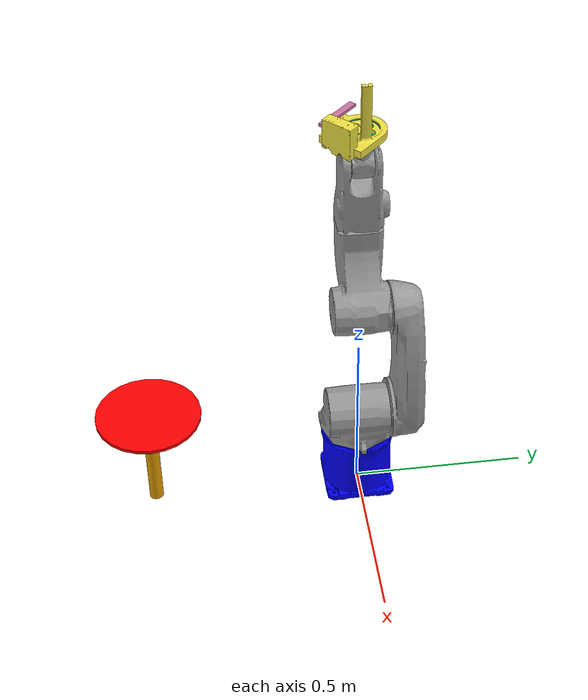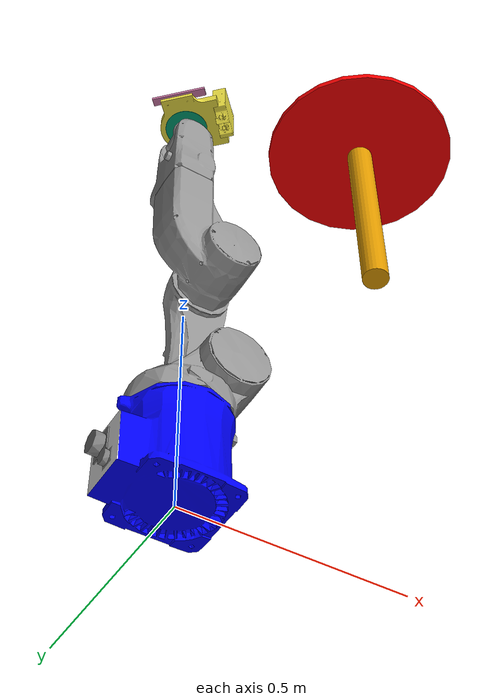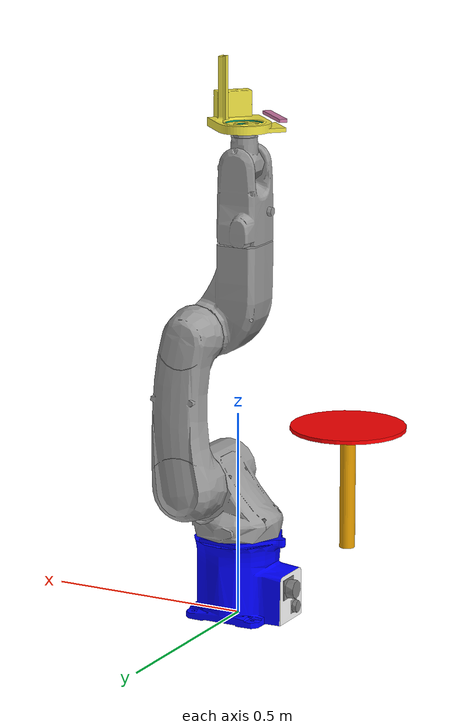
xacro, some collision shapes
<?xml version="1.0" encoding="UTF-8"?>
<robot name="multisensor_vs6577" xmlns:xacro="http://www.ros.org/wiki/xacro">
    <xacro:arg name="sim" default="True" />
    <xacro:include filename="$(find denso_robot_descriptions)/vs6577_description/urdf/vs6577.urdf.xacro"/>

    <xacro:include filename="$(find add_post_pro_robot)/urdf/turntable.urdf.xacro"/>

    <!-- Create camera instance -->
    <turntable parent="world">
		<origin xyz="0 -.6 0.16" rpy="0 0 0"/>
    </turntable>

    <xacro:include filename="$(find add_post_pro_robot)/urdf/multisensor_holder.urdf.xacro"/>
</robot>

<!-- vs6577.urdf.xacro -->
<robot name="vs6577" xmlns:xacro="http://www.ros.org/wiki/xacro">

<xacro:include filename="$(find denso_robot_descriptions)/vs6577_description/urdf/vs6577.transmission.xacro"/>

	<gazebo>
        <plugin name="gazebo_ros_control" filename="libgazebo_ros_control.so">
            <robotNamespace>/vs6577</robotNamespace>
			<legacyModeNS>true</legacyModeNS>
        </plugin>
    </gazebo>

	<link name="world"/>

	<joint name="joint_w" type="fixed">
		<parent link="world"/>
		<child link="base_link"/>
		<origin xyz="0 0 0"/>
	</joint>

	<link name="base_link">
		<visual>
			<origin rpy="0 0 0" xyz="0 0 0"/>
			<geometry>
				<mesh filename="package://denso_robot_descriptions/vs6577_description/meshes/base_link.dae" scale="1 1 1"/>
			</geometry>
		</visual>
		<collision>
			<origin rpy="0 0 0" xyz="0 0 0"/>
			<geometry>
				<mesh filename="package://denso_robot_descriptions/vs6577_description/meshes/base_link.dae" scale="1 1 1"/>
			</geometry>
		</collision>
		<inertial>
			<mass value="1"/>
			<origin rpy="0.000000 0.000000 0.000000" xyz="0.000000 0.000000 0.000000"/>
			<inertia ixx="1" ixy="0" ixz="0" iyy="1" iyz="0" izz="1"/>
		</inertial>
	</link>
	<link name="J1">
		<visual>
			<origin rpy="0 0 0" xyz="0 0 0"/>
			<geometry>
				<mesh filename="package://denso_robot_descriptions/vs6577_description/meshes/J1.dae" scale="1 1 1"/>
			</geometry>
		</visual>
		<collision>
			<origin rpy="0 0 0" xyz="0 0 0"/>
			<geometry>
				<mesh filename="package://denso_robot_descriptions/vs6577_description/meshes/J1.dae" scale="1 1 1"/>
			</geometry>
		</collision>
		<inertial>
			<mass value="1"/>
			<origin rpy="0.000000 0.000000 0.000000" xyz="0.000000 0.000000 0.000000"/>
			<inertia ixx="1" ixy="0" ixz="0" iyy="1" iyz="0" izz="1"/>
		</inertial>
	</link>
	<link name="J2">
		<visual>
			<origin rpy="0 0 0" xyz="0 0 0"/>
			<geometry>
				<mesh filename="package://denso_robot_descriptions/vs6577_description/meshes/J2.dae" scale="1 1 1"/>
			</geometry>
		</visual>
		<collision>
			<origin rpy="0 0 0" xyz="0 0 0"/>
			<geometry>
				<mesh filename="package://denso_robot_descriptions/vs6577_description/meshes/J2.dae" scale="1 1 1"/>
			</geometry>
		</collision>
		<inertial>
			<mass value="1"/>
			<origin rpy="0.000000 0.000000 0.000000" xyz="0.000000 0.000000 0.000000"/>
			<inertia ixx="1" ixy="0" ixz="0" iyy="1" iyz="0" izz="1"/>
		</inertial>
	</link>
	<link name="J3">
		<visual>
			<origin rpy="0 0 0" xyz="0 0 0"/>
			<geometry>
				<mesh filename="package://denso_robot_descriptions/vs6577_description/meshes/J3.dae" scale="1 1 1"/>
			</geometry>
		</visual>
		<collision>
			<origin rpy="0 0 0" xyz="0 0 0"/>
			<geometry>
				<mesh filename="package://denso_robot_descriptions/vs6577_description/meshes/J3.dae" scale="1 1 1"/>
			</geometry>
		</collision>
		<inertial>
			<mass value="1"/>
			<origin rpy="0.000000 0.000000 0.000000" xyz="0.000000 0.000000 0.000000"/>
			<inertia ixx="1" ixy="0" ixz="0" iyy="1" iyz="0" izz="1"/>
		</inertial>
	</link>
	<link name="J4">
		<visual>
			<origin rpy="0 0 0" xyz="0 0 0"/>
			<geometry>
				<mesh filename="package://denso_robot_descriptions/vs6577_description/meshes/J4.dae" scale="1 1 1"/>
			</geometry>
		</visual>
		<collision>
			<origin rpy="0 0 0" xyz="0 0 0"/>
			<geometry>
				<mesh filename="package://denso_robot_descriptions/vs6577_description/meshes/J4.dae" scale="1 1 1"/>
			</geometry>
		</collision>
		<inertial>
			<mass value="1"/>
			<origin rpy="0.000000 0.000000 0.000000" xyz="0.000000 0.000000 0.000000"/>
			<inertia ixx="1" ixy="0" ixz="0" iyy="1" iyz="0" izz="1"/>
		</inertial>
	</link>
	<link name="J5">
		<visual>
			<origin rpy="0 0 0" xyz="0 0 0"/>
			<geometry>
				<mesh filename="package://denso_robot_descriptions/vs6577_description/meshes/J5.dae" scale="1 1 1"/>
			</geometry>
		</visual>
		<collision>
			<origin rpy="0 0 0" xyz="0 0 0"/>
			<geometry>
				<mesh filename="package://denso_robot_descriptions/vs6577_description/meshes/J5.dae" scale="1 1 1"/>
			</geometry>
		</collision>
		<inertial>
			<mass value="1"/>
			<origin rpy="0.000000 0.000000 0.000000" xyz="0.000000 0.000000 0.000000"/>
			<inertia ixx="1" ixy="0" ixz="0" iyy="1" iyz="0" izz="1"/>
		</inertial>
	</link>
	<link name="J6">
		<visual>
			<origin rpy="0 0 0" xyz="0 0 0"/>
			<geometry>
				<mesh filename="package://denso_robot_descriptions/vs6577_description/meshes/J6.dae" scale="1 1 1"/>
			</geometry>
		</visual>
		<collision>
			<origin rpy="0 0 0" xyz="0 0 0"/>
			<geometry>
				<mesh filename="package://denso_robot_descriptions/vs6577_description/meshes/J6.dae" scale="1 1 1"/>
			</geometry>
		</collision>
		<inertial>
			<mass value="1"/>
			<origin rpy="0.000000 0.000000 0.000000" xyz="0.000000 0.000000 0.000000"/>
			<inertia ixx="1" ixy="0" ixz="0" iyy="1" iyz="0" izz="1"/>
		</inertial>
	</link>

	<gazebo reference="base_link">
		<material>Gazebo/CoM</material>
	</gazebo>
	<gazebo reference="J1">
		<material>Gazebo/Gray</material>
	</gazebo>
	<gazebo reference="J2">
		<material>Gazebo/Gray</material>
	</gazebo>
	<gazebo reference="J3">
		<material>Gazebo/Gray</material>
	</gazebo>
	<gazebo reference="J4">
		<material>Gazebo/Gray</material>
	</gazebo>
	<gazebo reference="J5">
		<material>Gazebo/Gray</material>
	</gazebo>
	<gazebo reference="J6">
		<material>Gazebo/Gray</material>
	</gazebo>

	<gazebo>
		<gravity>False</gravity>
	</gazebo>
	<joint name="joint_1" type="revolute">
		<parent link="base_link"/>
		<child link="J1"/>
		<origin rpy="0.000000 0.000000 0.000000" xyz="0.000000 0.000000 0.000000"/>
		<axis xyz="-0.000000 -0.000000 1.000000"/>
		<limit effort="100" lower="-2.96706" upper="2.96706" velocity="1"/>
		<dynamics damping="0" friction="0"/>
	</joint>

	<joint name="joint_2" type="revolute">
		<parent link="J1"/>
		<child link="J2"/>
		<origin rpy="0.000000 0.000000 0.000000" xyz="0.075000 0.000000 0.335000"/>
		<axis xyz="-0.000000 1.000000 -0.000000"/>
		<limit effort="100" lower="-1.745329" upper="2.356194" velocity="1"/>
		<dynamics damping="0" friction="0"/>
	</joint>

	<joint name="joint_3" type="revolute">
		<parent link="J2"/>
		<child link="J3"/>
		<origin rpy="0.000000 0.000000 0.000000" xyz="0.000000 0.000000 0.365000"/>
		<axis xyz="-0.000000 1.000000 -0.000000"/>
		<limit effort="100" lower="-2.076942" upper="2.949606" velocity="1"/>
		<dynamics damping="0" friction="0"/>
	</joint>

	<joint name="joint_4" type="revolute">
		<parent link="J3"/>
		<child link="J4"/>
		<origin rpy="0.000000 0.000000 0.000000" xyz="-0.090000 0.000000 -0.700000"/>
		<axis xyz="-0.000000 -0.000000 1.000000"/>
		<limit effort="100" lower="-3.316126" upper="3.316126" velocity="1"/>
		<dynamics damping="0" friction="0"/>
	</joint>

	<joint name="joint_5" type="revolute">
		<parent link="J4"/>
		<child link="J5"/>
		<origin rpy="0.000000 0.000000 0.000000" xyz="0.000000 0.000000 1.105000"/>
		<axis xyz="-0.000000 1.000000 -0.000000"/>
		<limit effort="100" lower="-2.094395" upper="2.094395" velocity="1"/>
		<dynamics damping="0" friction="0"/>
	</joint>

	<joint name="joint_6" type="revolute">
		<parent link="J5"/>
		<child link="J6"/>
		<origin rpy="0.000000 0.000000 0.000000" xyz="0.000000 0.000000 0.080000"/>
		<axis xyz="-0.000000 -0.000000 1.000000"/>
		<limit effort="100" lower="-6.283185" upper="6.283185" velocity="1"/>
		<dynamics damping="0" friction="0"/>
	</joint>

</robot>

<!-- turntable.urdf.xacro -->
<robot xmlns:xacro="http://www.ros.org/wiki/xacro">

    <xacro:macro name="turntable" params="parent *origin">
        <link name="turntable_base">
            <visual>
                <origin rpy="0 0 0" xyz="0 0 0" />
                <geometry>
                    <cylinder length=".32" radius=".02" />
                </geometry>
            </visual>
            <collision>
                <origin rpy="0 0 0" xyz="0 0 0" />
                <geometry>
                    <cylinder length=".32" radius=".02" />
                </geometry>
            </collision>

        <inertial>
                <origin rpy="0 0 0" xyz="0 0 0" />
                <mass value="1" />
                <inertia ixx="100" ixy="0" ixz="0" iyy="100" iyz="0" izz="100" />
            </inertial>

        </link>
        <link name="turntable_plate">
            <visual>
                <origin rpy="0 0 0" xyz="0 0 0" />
                <geometry>
                    <cylinder length=".01" radius=".15" />
                </geometry>
                <material name="Red">
                    <color rgba="1.0 0 0 1.0" />
                </material>
            </visual>
            <collision>
                <origin rpy="0 0 0" xyz="0 0 0" />
                <geometry>
                    <cylinder length=".01" radius=".15" />
                </geometry>
            </collision>

        <inertial>
                <origin rpy="0 0 0" xyz="0 0 0" />
                <mass value="1" />
                <inertia ixx="100" ixy="0" ixz="0" iyy="100" iyz="0" izz="100" />
            </inertial>

        </link>
        <joint name="turntable_joint" type="fixed">
            <parent link="${parent}"/>
            <child link="turntable_base" />
            <xacro:insert_block name="origin"/>
        </joint>
        <joint name="turntable_revolve_joint" type="continuous">
            <parent link="turntable_base" />
            <child link="turntable_plate" />
            <origin rpy="0.000000 0.000000 0.000000" xyz="0.000000 0.000000 .16" />
            <limit effort="1000.0" velocity="0.5" />
            <limit effort="1000.0"  />
            <axis xyz="0 0 1" />
        </joint>

        <transmission name="trans_turntable_revolve_joint">
            <type>transmission_interface/SimpleTransmission</type>
            <joint name="turntable_revolve_joint">
                <hardwareInterface>hardware_interface/PositionJointInterface</hardwareInterface>
            </joint>
            <actuator name="turntable_revolve_joint_motor">
                <hardwareInterface>hardware_interface/PositionJointInterface</hardwareInterface>
                <mechanicalReduction>1</mechanicalReduction>
            </actuator>
        </transmission>
    </xacro:macro>
</robot>

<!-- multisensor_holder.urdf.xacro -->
<robot xmlns:xacro="http://www.ros.org/wiki/xacro">
	<!-- DONE -->
	<xacro:property name="M_PI" value="3.1415926535897931" />

	<link name="EEF_tool_mount">
		<visual>
			<origin rpy="0.000000 0 0" xyz="0 0 0"/>
			<geometry>
				<mesh filename="package://add_post_pro_robot/meshes/tool_mount.stl" scale=".001 .001 .001"/>
			</geometry>
		</visual>
		<collision>
			<origin rpy="0.000000 0 0" xyz="0 0 0"/>
			<geometry>
				<mesh filename="package://add_post_pro_robot/meshes/tool_mount.stl" scale=".001 .001 .001"/>
			</geometry>
		</collision>
		<inertial>
			<mass value="1"/>
			<origin rpy="0.000000 0.000000 0.000000" xyz="0.000000 0.000000 0.000000"/>
			<inertia ixx="1" ixy="0" ixz="0" iyy="1" iyz="0" izz="1"/>
		</inertial>
    </link>

	<link name="EEF_sensor_holder">
		<visual>
			<origin rpy="0 0 0" xyz="0 0 0"/>
			<geometry>
				<mesh filename="package://add_post_pro_robot/meshes/multisensor_holder_origin.stl" scale=".001 .001 .001"/>
			</geometry>
		</visual>
		<collision>
			<origin rpy="0 0 0" xyz="0 0 0"/>
			<geometry>
				<mesh filename="package://add_post_pro_robot/meshes/multisensor_holder_origin.stl" scale=".001 .001 .001"/>
			</geometry>
		</collision>
		<inertial>
			<mass value="1"/>
			<origin rpy="0.000000 0.000000 0.000000" xyz="0.000000 0.000000 0.000000"/>
			<inertia ixx="1" ixy="0" ixz="0" iyy="1" iyz="0" izz="1"/>
		</inertial>
	</link>

	<link name="EEF_scanner"/>
	<link name="EEF_depstech_camera"/>

	<joint name="end_effector_mount" type="fixed">
		<parent link="J6"/>
		<child link="EEF_tool_mount"/>
		<origin rpy="0.000000 0.000000 0.000000" xyz="0.000000 0.000000 0.000000"/>
	</joint>

	<!--Changes here!-->
	<joint name="end_effector_magnet" type="fixed">
		<parent link="J6"/>
		<child link="EEF_sensor_holder"/>
		<origin rpy="0.000000 0.00000 ${225*M_PI/180}" xyz="0.000000 0.000000 0.000000"/>
	</joint>

	<!--Changes here!-->
    <joint name="end_effector_scanner_holder" type="fixed">
    	<parent link="EEF_sensor_holder"/>
		<child link="EEF_scanner"/>
		<origin rpy="0.000000 ${M_PI} ${M_PI/2}" xyz="0.000000 0.091600 0.005500"/>
	</joint>

	<joint name="end_effector_depstech_holder" type="fixed">
		<parent link="EEF_sensor_holder"/>
		<child link="EEF_depstech_camera"/>
		<origin rpy="${M_PI/8} ${-M_PI/4} ${-M_PI/3.95}" xyz="-0.042000 0.0353000 0.19000"/>
	</joint>

	<xacro:include filename="$(find add_post_pro_robot)/urdf/D415.xacro"/>

    <!-- Create camera instance -->
    <realsense-D415 prefix="" parent="EEF_sensor_holder">
		<origin xyz=".075 0.001 .031" rpy="0 ${-4*M_PI/8} ${M_PI}"/>
    </realsense-D415>

	<xacro:include filename="$(find add_post_pro_robot)/urdf/scancontrol.xacro"/>
	<scancontrol2900-100 parent="EEF_scanner"/>

	<xacro:include filename="$(find add_post_pro_robot)/urdf/depstech_camera.urdf.xacro"/>
	<depstech_camera parent="EEF_depstech_camera"/>
	<gazebo reference="EEF_sensor_holder">
        <material>Gazebo/CoM</material>
    </gazebo>
	<gazebo reference="D415_camera">
        <material>Gazebo/CoM</material>
    </gazebo>
</robot>

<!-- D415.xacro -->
<robot xmlns:xacro="http://www.ros.org/wiki/xacro">
<xacro:macro name="realsense-D415" params="prefix parent *origin">

    <!-- Camera link -->
    <link name="${prefix}D415_camera">
        <visual>
            <origin rpy="${M_PI/2} 0 ${M_PI/2}" xyz="0 0 0"/>
            <geometry>
                <mesh filename="package://realsense_cam/meshes/simplified_d415.stl"/>
            </geometry>
        </visual>
        <collision>
            <geometry>
                <box size="0.0078 0.130 0.0192"/>
            </geometry>
        </collision>
        <inertial>
            <mass value="0.0615752"/>
            <origin rpy="0 0 0" xyz="0 0 0"/>
            <inertia ixx="9.108e-05"
                     ixy="0"
                     ixz="0"
                     iyy="2.51e-06"
                     iyz="0"
                     izz="8.931e-05"
            />
        </inertial>
    </link>

    <!-- Connect camera to parent frame-->
    <joint name="${prefix}realsense_joint" type="fixed">
        <parent link="${parent}"/>
        <child link="${prefix}D415_camera"/>
        <xacro:insert_block name="origin"/>
    </joint>

    <!-- Virtual links representing the cameras positons and orientations-->
    <link name="${prefix}D415_color_optical_frame" />
    <link name="${prefix}D415_depth_optical_frame" />
    <link name="${prefix}D415_ired1_optical_frame" />
    <link name="${prefix}D415_ired2_optical_frame" />

    <!-- Joints positioning the virtual links with respect to the camera main link-->
    <joint name="${prefix}color_joint" type="fixed">
        <parent link="${prefix}D415_camera" />
        <child link="${prefix}D415_color_optical_frame" />
        <!-- The default position is change since in Rviz the cloud depth axis is Z not X-->
        <origin xyz="0 0 0 " rpy="${pi/2} ${pi} ${pi/2}"/>
    </joint>

    <joint name="${prefix}depth_joint" type="fixed">
        <parent link="${prefix}D415_camera" />
        <child link="${prefix}D415_depth_optical_frame" />
        <origin xyz="0 0 0" rpy="0 0 0"/>
    </joint>

    <joint name="${prefix}ired1_joint" type="fixed">
        <parent link="${prefix}D415_camera" />
        <child link="${prefix}D415_ired1_optical_frame" />
        <origin xyz="0 0 0" rpy="0 0 0"/>
    </joint>

    <joint name="${prefix}ired2_joint" type="fixed">
        <parent link="${prefix}D415_camera" />
        <child link="${prefix}D415_ired2_optical_frame" />
        <origin xyz="0 -0.055 0" rpy="0 0 0"/>
    </joint>

<!-- GAZEBO DEFINITIONS ***************************************-->

    <!-- Load plugin to the model ("robot" in urdf format)-->
    <gazebo>
        <plugin name="${prefix}D415" filename="librealsense_gazebo_plugin.so"/>
    </gazebo>

    <!-- Load parameters to model's main link-->
    <gazebo reference="${prefix}D415_camera">
        <self_collide>0</self_collide>
        <enable_wind>0</enable_wind>
        <kinematic>0</kinematic>
        <gravity>1</gravity>
        <mu2>1</mu2>
        <fdir1>0 0 0</fdir1>
        <kp>1e+13</kp>
        <kd>1</kd>

        <sensor name="D415_color_optical_frame" type="camera">
            <frameName>D415_color_optical_frame</frameName>
            <pose frame="">0 0 0 0 0 0</pose>
            <camera name="${prefix}D415_camera">
            <horizontal_fov>1.211259</horizontal_fov>
            <image>
                <width>1280</width>
                <height>720</height>
                <format>RGB_INT8</format>
            </image>
            <clip>
                <near>0.1</near>
                <far>100</far>
            </clip>
            <noise>
                <type>gaussian</type>
                <mean>0.0</mean>
                <stddev>0.007</stddev>
            </noise>
            </camera>
            <always_on>1</always_on>
            <update_rate>60</update_rate>
            <visualize>1</visualize>
        </sensor>
        <sensor name="D415_ired1_optical_frame" type="camera">
            <frameName>D415_ired1_optical_frame</frameName>
            <pose frame="">0 0 0 0 0 0</pose>
            <camera name="${prefix}D415_camera">
            <horizontal_fov>1.047</horizontal_fov>
            <image>
                <width>1280</width>
                <height>720</height>
                <format>L_INT8</format>
            </image>
            <clip>
                <near>0.1</near>
                <far>100</far>
            </clip>
            <noise>
                <type>gaussian</type>
                <mean>0.0</mean>
                <stddev>0.05</stddev>
            </noise>
            </camera>
            <always_on>1</always_on>
            <update_rate>60</update_rate>
            <visualize>0</visualize>
        </sensor>
        <sensor name="D415_ired2_optical_frame" type="camera">
            <frameName>D415_ired2_optical_frame</frameName>
            <pose frame="">0 -0.055 0 0 0</pose>
            <camera name="${prefix}D415_camera">
            <horizontal_fov>1.047</horizontal_fov>
            <image>
                <width>1280</width>
                <height>720</height>
                <format>L_INT8</format>
            </image>
            <clip>
                <near>0.1</near>
                <far>100</far>
            </clip>
            <noise>
                <type>gaussian</type>
                <mean>0.0</mean>
                <stddev>0.05</stddev>
            </noise>
            </camera>
            <always_on>1</always_on>
            <update_rate>60</update_rate>
            <visualize>0</visualize>
        </sensor>
        <sensor name="D415_depth_optical_frame" type="depth">
            <pose frame="">0 0 0 0 0 0</pose>
	        <camera name="${prefix}D415_camera">
            <frameName>D415_depth_optical_frame</frameName>
	        <horizontal_fov>1.13446</horizontal_fov>
            <image>
                    <width>1280</width>
                    <height>720</height>
            </image>
            <clip>
                    <near>0.1</near>
                    <far>100</far>
            </clip>
            <noise>
                    <type>gaussian</type>
                    <mean>0.0</mean>
                    <stddev>0.100</stddev>
            </noise>
            </camera>
            <always_on>1</always_on>
            <update_rate>60</update_rate>
            <visualize>0</visualize>
        </sensor>
    </gazebo>

</xacro:macro>
</robot>

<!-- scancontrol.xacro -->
<robot xmlns:xacro="http://www.ros.org/wiki/xacro">
<xacro:property name="M_PI" value="3.1415926535897931" />

<xacro:macro name="scancontrol2900-100" params="parent">
<!-- DONE -->
    <!-- Scanner link -->
    <link name="EEF_scancontrol">
		<visual>
			<origin rpy="0 0 0" xyz="0 0 0"/>
			<geometry>
				<mesh filename="package://add_post_pro_robot/meshes/scancontrol2900.stl" scale=".001 .001 .001"/>
			</geometry>
		</visual>
		<collision>
			<origin rpy="0 0 0" xyz="0 0 0"/>
			<geometry>
				<mesh filename="package://add_post_pro_robot/meshes/scancontrol2900_collision.stl" scale=".001 .001 .001"/>
			</geometry>
		</collision>
		<inertial>
			<mass value="1"/>
			<origin rpy="0.000000 0.000000 0.000000" xyz="0.000000 0.000000 0.000000"/>
			<inertia ixx="1" ixy="0" ixz="0" iyy="1" iyz="0" izz="1"/>
		</inertial>
	</link>

    <link name="scancontrol2900-50_laser"/>
    <link name = "true_laser"/>
    <joint name="end_effector_scanner" type="fixed">
    	<parent link="${parent}"/>
		<child link="EEF_scancontrol"/>
		<origin rpy="0.000000 0.0000 ${M_PI}" xyz="0.000000 0.000000 0.000000"/>
    </joint>

    <joint name="laser_joint" type="fixed">
        <parent link="EEF_scancontrol" />
        <child link="scancontrol2900-50_laser" />
        <origin xyz="0 -0.0324522 -.0761366" rpy="0 0 ${M_PI}"/>
    </joint>

    <joint name="imaginary_joint" type="fixed">
        <parent link="scancontrol2900-50_laser" />
        <child link="true_laser" />
        <origin xyz="0 0 0" rpy="${M_PI} 0 0"/>
    </joint>
	<gazebo reference="scancontrol2900-50_laser">
		<sensor type="gpu_ray" name="scancontrol">
            <pose>0 0 0 0 0 0</pose>
            <visualize>true</visualize>
            <update_rate>40</update_rate>
            <ray>
                <scan>
                    <horizontal>
                        <samples>1024</samples>
                        <resolution>1</resolution>
                        <min_angle>-${M_PI/8}</min_angle>
                        <max_angle>${M_PI/8}</max_angle>
                    </horizontal>
                </scan>
                <range>
                    <min>0.1</min>
                    <max>0.500</max>
                    <resolution>0.01</resolution>
                </range>
            </ray>
            <plugin name="scancontrol_laser" filename="libgazebo_ros_gpu_laser.so">
                <topicName>/arm/laser_scan</topicName>
                <frameName>scancontrol2900-50_laser</frameName>
            </plugin>
		</sensor>
	</gazebo>
</xacro:macro>
</robot>

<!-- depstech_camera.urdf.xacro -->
<robot xmlns:xacro="http://www.ros.org/wiki/xacro">
<xacro:macro name="depstech_camera" params="parent">

    <xacro:property name="camera_link" value="0.02" />
    <link name="depstech_camera_link">
        <collision>
            <origin xyz="0 0 0" rpy="0 0 0"/>
            <geometry>
                <cylinder radius="${camera_link/2}" length="${camera_link}"/>
            </geometry>
        </collision>

        <inertial>
            <mass value="1e-5" />
            <origin xyz="0 0 0" rpy="0 0 0"/>
            <inertia ixx="1e-6" ixy="0" ixz="0" iyy="1e-6" iyz="0" izz="1e-6" />
        </inertial>
    </link>

    <joint name="camera_link_joint" type="fixed">
    	<parent link="${parent}"/>
		<child link="depstech_camera_link"/>
		<origin rpy="0.000000 0.000000 0.000000" xyz="0.000000 0.000000 0.000000"/>
    </joint>

  <!-- camera -->
  <gazebo reference="depstech_camera_link">
    <sensor type="camera" name="depstech_camera">
      <update_rate>30.0</update_rate>
      <camera name="depstech_camera">
        <horizontal_fov>1.3962634</horizontal_fov>
        <image>
          <width>800</width>
          <height>800</height>
          <format>R8G8B8</format>
        </image>
        <clip>
          <near>0.02</near>
          <far>300</far>
        </clip>
        <noise>
          <type>gaussian</type>
          <!-- Noise is sampled independently per pixel on each frame.
               That pixel's noise value is added to each of its color
               channels, which at that point lie in the range [0,1]. -->
          <mean>0.0</mean>
          <stddev>0.007</stddev>
        </noise>
      </camera>
      <plugin name="camera_controller" filename="libgazebo_ros_camera.so">
        <alwaysOn>true</alwaysOn>
        <updateRate>0.0</updateRate>
        <cameraName>depstech_camera/camera/</cameraName>
        <imageTopicName>image_raw</imageTopicName>
        <cameraInfoTopicName>camera_info</cameraInfoTopicName>
        <frameName>depstech_camera_link</frameName>
        <hackBaseline>0.07</hackBaseline>
        <distortionK1>0.0</distortionK1>
        <distortionK2>0.0</distortionK2>
        <distortionK3>0.0</distortionK3>
        <distortionT1>0.0</distortionT1>
        <distortionT2>0.0</distortionT2>
      </plugin>
    </sensor>
  </gazebo>
</xacro:macro>
</robot>
